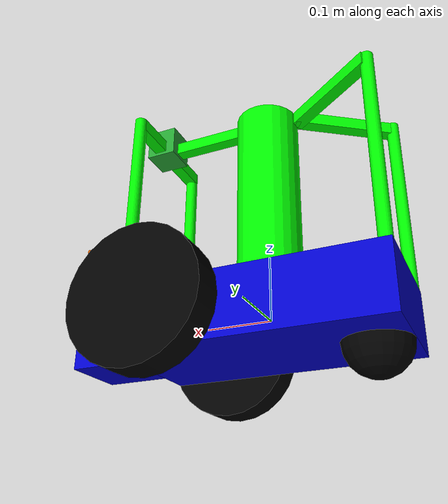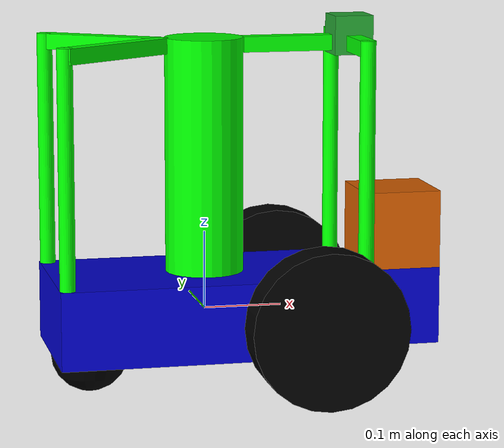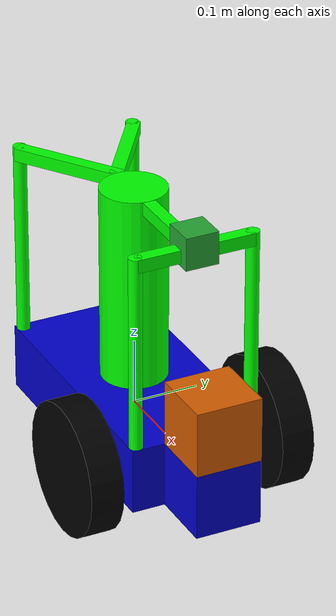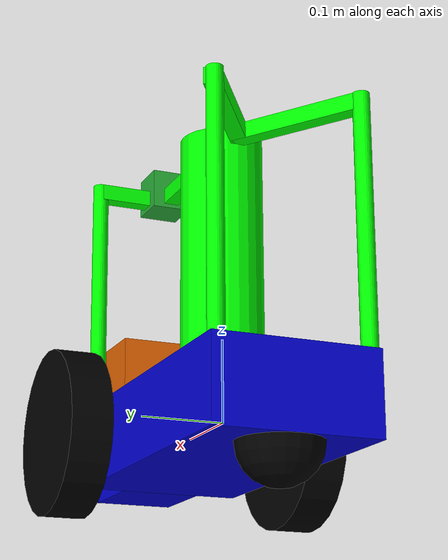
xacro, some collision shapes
<?xml version='1.0'?>

<robot name="sg_bot" xmlns:xacro="http://www.ros.org/wiki/xacro">

  <xacro:include filename="$(find sg_bot)/urdf/sg_bot.gazebo"/>

  <link name="robot_footprint"></link>

  <joint name="robot_footprint_joint" type="fixed">
    <origin xyz="0 0 0" rpy="0 0 0" />
    <parent link="robot_footprint"/>
    <child link="chassis" />
  </joint>

  <material name="blue">
    <color rgba="0 0 0.8 1"/>
  </material>
  <material name="green">
    <color rgba="0 1 0 1"/>
  </material>
  <material name="black">
    <color rgba="0 0 0 1"/>
  </material>
  <material name="white">
    <color rgba="1 1 1 1"/>
  </material>

  <link name='chassis'>
    <pose>0 0 0.1 0 0 0</pose>

    <inertial>
      <mass value="12.0"/>
      <origin xyz="0.0 0 0" rpy=" 0 0 0"/>
      <inertia
          ixx="0.1" ixy="0" ixz="0"
          iyy="0.1" iyz="0"
          izz="0.1"
      />
    </inertial>

    <collision name='collision'>
      <origin xyz="0 0 0" rpy=" 0 0 0"/>
      <geometry>
        <box size=".4 .2 .1"/>
      </geometry>
    </collision>

    <visual name='chassis_visual'>
      <origin xyz="0 0 0" rpy=" 0 0 0"/>
      <geometry>
        <box size=".4 .2 .1"/>
      </geometry>
      <material name="blue"/>
    </visual>

    <visual name='front_bump_visual'>
      <origin xyz="0.25 0 0" rpy=" 0 0 0"/>
      <geometry>
        <box size=".1 .1 .1"/>
      </geometry>
      <material name="blue"/>
    </visual>

    <collision name='front_bump_collision'>
      <origin xyz="0.25 0 0" rpy=" 0 0 0"/>
      <geometry>
        <box size=".1 .1 .1"/>
      </geometry>
    </collision>

    <collision name='back_caster_collision'>
      <origin xyz="-0.15 0 -0.05" rpy=" 0 0 0"/>
      <geometry>
        <sphere radius="0.0499"/>
      </geometry>
    </collision>

    <visual name='back_caster_visual'>
      <origin xyz="-0.15 0 -0.05" rpy=" 0 0 0"/>
      <geometry>
        <sphere radius="0.05"/>
      </geometry>
      <material name="black"/>
    </visual>

	<visual name='center_cylinder_visual'>
	  <origin xyz="0 0 0.2" rpy=" 0 0 0"/>
      <geometry>
         <cylinder length="0.3" radius="0.05"/>
      </geometry>
      <material name="green"/>
    </visual>

	<collision name='center_cylinder_collision'>
      <origin xyz="0 0 0.2" rpy=" 0 0 0"/>
      <geometry>
        <cylinder length="0.3" radius="0.05"/>
      </geometry>
    </collision>

    <visual name='left_back_cylinder_visual'>
	  <origin xyz="-0.19 0.09 0.2" rpy=" 0 0 0"/>
      <geometry>
         <cylinder length="0.3" radius="0.01"/>
      </geometry>
      <material name="green"/>
    </visual>

	<collision name='left_back_cylinder_collision'>
      <origin xyz="-0.19 0.09 0.2" rpy=" 0 0 0"/>
      <geometry>
        <cylinder length="0.3" radius="0.01"/>
      </geometry>
    </collision>

    <visual name='right_back_cylinder_visual'>
	  <origin xyz="-0.19 -0.09 0.2" rpy=" 0 0 0"/>
      <geometry>
         <cylinder length="0.3" radius="0.01"/>
      </geometry>
      <material name="green"/>
    </visual>

	<collision name='right_back_cylinder_collision'>
      <origin xyz="-0.19 -0.09 0.2" rpy=" 0 0 0"/>
      <geometry>
        <cylinder length="0.3" radius="0.01"/>
      </geometry>
    </collision>

    <visual name='back_left_top_box_visual'>
	  <origin xyz="-0.12 0.045 0.34" rpy=" 0 0 -0.6"/>
      <geometry>
         <box size=".17 .02 .02"/>
      </geometry>
      <material name="green"/>
    </visual>

	<collision name='back_left_top_box_collision'>
      <origin xyz="-0.12 0.045 0.34" rpy=" 0 0 -0.6"/>
      <geometry>
        <box size=".17 .02 .02"/>
      </geometry>
    </collision>

     <visual name='back_right_top_box_visual'>
	  <origin xyz="-0.12 -0.045 0.34" rpy=" 0 0 0.6"/>
      <geometry>
         <box size=".17 .02 .02"/>
      </geometry>
      <material name="green"/>
    </visual>

	<collision name='back_right_top_box_collision'>
      <origin xyz="-0.12 -0.045 0.34" rpy=" 0 0 0.6"/>
      <geometry>
        <box size=".17 .02 .02"/>
      </geometry>
    </collision>

    <visual name='front_left_cylinder_visual'>
	  <origin xyz="0.19 0.09 0.2" rpy=" 0 0 0"/>
      <geometry>
         <cylinder length="0.3" radius="0.01"/>
      </geometry>
      <material name="green"/>
    </visual>

	<collision name='front_left_cylinder_collision'>
      <origin xyz="0.19 0.09 0.2" rpy=" 0 0 0"/>
      <geometry>
        <cylinder length="0.3" radius="0.01"/>
      </geometry>
    </collision>

    <visual name='front_right_cylinder_visual'>
	  <origin xyz="0.19 -0.09 0.2" rpy=" 0 0 0"/>
      <geometry>
         <cylinder length="0.3" radius="0.01"/>
      </geometry>
      <material name="green"/>
    </visual>

	<collision name='front_right_cylinder_collision'>
      <origin xyz="0.19 -0.09 0.2" rpy=" 0 0 0"/>
      <geometry>
        <cylinder length="0.3" radius="0.01"/>
      </geometry>
    </collision>

    <visual name='front_top_box_visual'>
	  <origin xyz="0.19 0.0 0.34" rpy=" 0 0 -1.57075"/>
      <geometry>
         <box size=".18 .02 .02"/>
      </geometry>
      <material name="green"/>
    </visual>

	<collision name='front_top_box_collision'>
      <origin xyz="0.19 0.0 0.34" rpy=" 0 0 -1.57075"/>
      <geometry>
        <box size=".18 .02 .02"/>
      </geometry>
    </collision>

     <visual name='front_center_top_box_visual'>
	  <origin xyz="0.12 0.0 0.34" rpy=" 0 0 0"/>
      <geometry>
         <box size=".14 .02 .02"/>
      </geometry>
      <material name="green"/>
    </visual>

	<collision name='front_center_top_box_collision'>
      <origin xyz="0.12 0.0 0.34" rpy=" 0 0 0.0"/>
      <geometry>
        <box size=".14 .02 .02"/>
      </geometry>
    </collision>

  </link>

  <xacro:macro name="wheel" params="prefix reflect">
    <link name="${prefix}_wheel">
      <visual>
        <origin xyz="0 0 0" rpy="0 1.57075 1.57075"/>
        <geometry>
          <cylinder length="0.05" radius="0.1"/>
        </geometry>
        <material name="black"/>
      </visual>

      <collision>
        <origin xyz="0 0 0" rpy="0 1.57075 1.57075"/>
        <geometry>
          <cylinder length="0.05" radius="0.1"/>
        </geometry>
      </collision>

      <inertial>
        <mass value="2"/>
        <inertia
          ixx="0.1" ixy="0" ixz="0"
          iyy="0.1" iyz="0"
          izz="0.1"/>
      </inertial>
    </link>

    <joint type="continuous" name="${prefix}_wheel_hinge">
      <origin xyz="0.125 ${reflect*0.15} 0" rpy="0 0 0"/>
      <child link="${prefix}_wheel"/>
      <parent link="chassis"/>
      <axis xyz="0 1 0" rpy="0 0 0"/>
      <limit effort="10000" velocity="1000"/>
      <dynamics damping="1.0" friction="1.0"/>
    </joint>
  </xacro:macro>

  <xacro:wheel prefix="left" reflect="1" />
  <xacro:wheel prefix="right" reflect="-1" />

  <link name="camera">
    <visual>
      <origin xyz="0 0 0" rpy="0 0 0"/>
      <geometry>
        <box size="0.05 0.05 0.05"/>
      </geometry>
    </visual>

    <collision>
      <geometry>
        <box size="0.05 0.05 0.05" />
      </geometry>
    </collision>

    <inertial>
      <mass value="0.1"/>
      <inertia
        ixx="1e-6" ixy="0" ixz="0"
        iyy="1e-6" iyz="0"
        izz="1e-6" />
    </inertial>
  </link>

  <joint type="fixed" name="camera_joint">
    <origin xyz="0.19 0 0.35" rpy="0 0 0"/>
    <child link="camera"/>
    <parent link="chassis"/>
  </joint>

  <link name="hokuyo">
    <visual>
      <origin xyz="0 0 0" rpy="0 0 0"/>
      <geometry>
        <mesh filename="package://sg_bot/meshes/hokuyo.dae"/>
      </geometry>
    </visual>

    <collision>
      <geometry>
        <box size="0.1 0.1 0.1" />
      </geometry>
    </collision>

    <inertial>
      <mass value="0.1"/>
      <inertia
        ixx="1e-6" ixy="0" ixz="0"
        iyy="1e-6" iyz="0"
        izz="1e-6" />
    </inertial>
  </link>

  <joint type="fixed" name="hokuyo_joint">
    <origin xyz="0.25 0 0.1" rpy="0 0 0"/>
    <child link="hokuyo"/>
    <parent link="chassis"/>
  </joint>

</robot>
